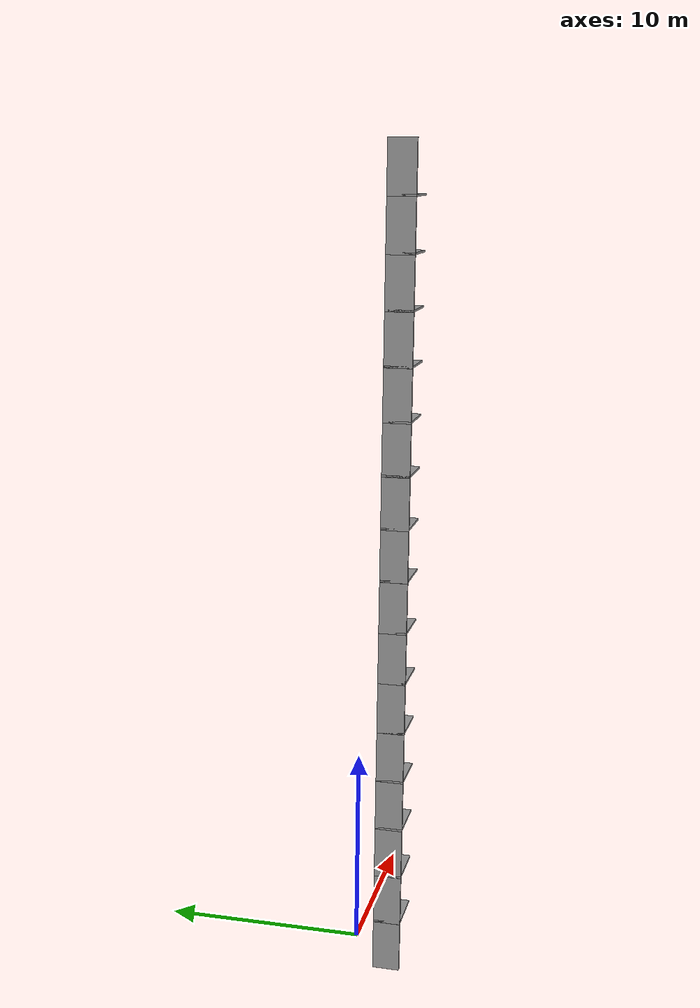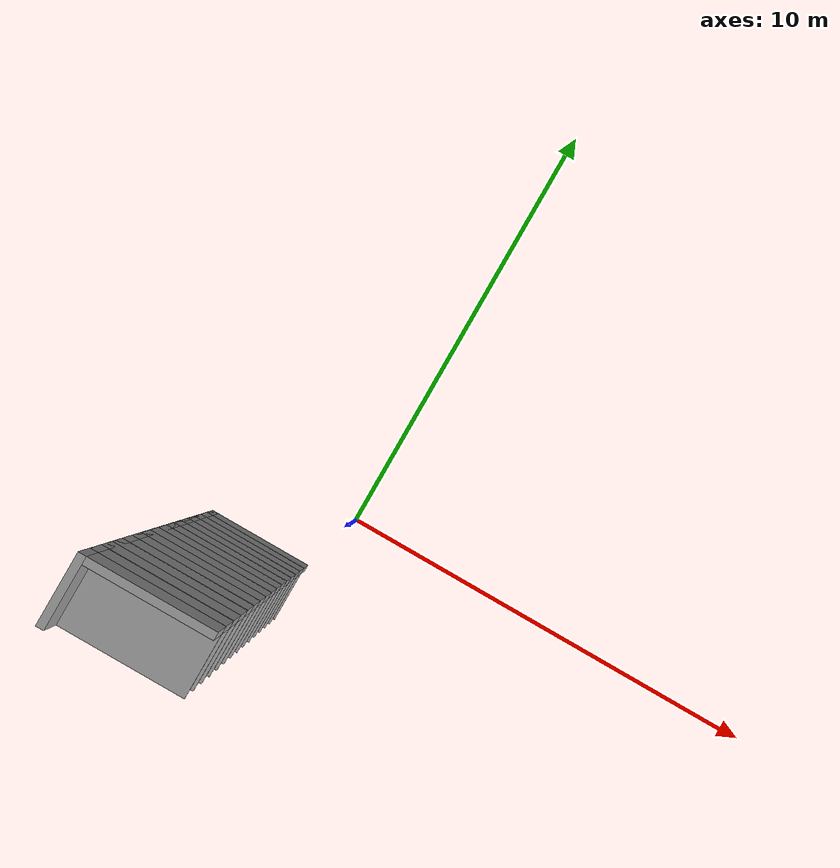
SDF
<?xml version='1.0'?>
<sdf version='1.6'>
  <model name='room1'>
    <pose frame=''>-1.68993 -2.12177 0 0 -0 0</pose>
    <link name='Floor_0'>
      <collision name='Floor_0_Collision'>
        <geometry>
          <box>
            <size>2.51 1.33 0.1</size>
          </box>
        </geometry>
        <pose frame=''>0 0 0.05 0 -0 0</pose>
      </collision>
      <visual name='Floor_0_Visual'>
        <pose frame=''>0 0 0.05 0 -0 0</pose>
        <geometry>
          <box>
            <size>2.51 1.33 0.1</size>
          </box>
        </geometry>
        <material>
          <script>
            <uri>file://media/materials/scripts/gazebo.material</uri>
            <name>Gazebo/Grey</name>
          </script>
          <ambient>1 1 1 1</ambient>
        </material>
        <meta>
          <layer>1</layer>
        </meta>
      </visual>
      <pose frame=''>0 -0 2.5 0 -0 0</pose>
    </link>
    <link name='Floor_1'>
      <collision name='Floor_1_Collision'>
        <geometry>
          <box>
            <size>2.51 1.33 0.1</size>
          </box>
        </geometry>
        <pose frame=''>0 0 0.05 0 -0 0</pose>
      </collision>
      <visual name='Floor_1_Visual'>
        <pose frame=''>0 0 0.05 0 -0 0</pose>
        <geometry>
          <box>
            <size>2.51 1.33 0.1</size>
          </box>
        </geometry>
        <material>
          <script>
            <uri>file://media/materials/scripts/gazebo.material</uri>
            <name>Gazebo/Grey</name>
          </script>
          <ambient>1 1 1 1</ambient>
        </material>
        <meta>
          <layer>2</layer>
        </meta>
      </visual>
      <pose frame=''>0 -0 5 0 -0 0</pose>
    </link>
    <link name='Floor_10'>
      <collision name='Floor_10_Collision'>
        <geometry>
          <box>
            <size>2.51 1.33 0.1</size>
          </box>
        </geometry>
        <pose frame=''>0 0 0.05 0 -0 0</pose>
      </collision>
      <visual name='Floor_10_Visual'>
        <pose frame=''>0 0 0.05 0 -0 0</pose>
        <geometry>
          <box>
            <size>2.51 1.33 0.1</size>
          </box>
        </geometry>
        <material>
          <script>
            <uri>file://media/materials/scripts/gazebo.material</uri>
            <name>Gazebo/Grey</name>
          </script>
          <ambient>1 1 1 1</ambient>
        </material>
        <meta>
          <layer>11</layer>
        </meta>
      </visual>
      <pose frame=''>0 -0 27.5 0 -0 0</pose>
    </link>
    <link name='Floor_11'>
      <collision name='Floor_11_Collision'>
        <geometry>
          <box>
            <size>2.51 1.33 0.1</size>
          </box>
        </geometry>
        <pose frame=''>0 0 0.05 0 -0 0</pose>
      </collision>
      <visual name='Floor_11_Visual'>
        <pose frame=''>0 0 0.05 0 -0 0</pose>
        <geometry>
          <box>
            <size>2.51 1.33 0.1</size>
          </box>
        </geometry>
        <material>
          <script>
            <uri>file://media/materials/scripts/gazebo.material</uri>
            <name>Gazebo/Grey</name>
          </script>
          <ambient>1 1 1 1</ambient>
        </material>
        <meta>
          <layer>12</layer>
        </meta>
      </visual>
      <pose frame=''>0 -0 30 0 -0 0</pose>
    </link>
    <link name='Floor_12'>
      <collision name='Floor_12_Collision'>
        <geometry>
          <box>
            <size>2.51 1.33 0.1</size>
          </box>
        </geometry>
        <pose frame=''>0 0 0.05 0 -0 0</pose>
      </collision>
      <visual name='Floor_12_Visual'>
        <pose frame=''>0 0 0.05 0 -0 0</pose>
        <geometry>
          <box>
            <size>2.51 1.33 0.1</size>
          </box>
        </geometry>
        <material>
          <script>
            <uri>file://media/materials/scripts/gazebo.material</uri>
            <name>Gazebo/Grey</name>
          </script>
          <ambient>1 1 1 1</ambient>
        </material>
        <meta>
          <layer>13</layer>
        </meta>
      </visual>
      <pose frame=''>0 -0 32.5 0 -0 0</pose>
    </link>
    <link name='Floor_13'>
      <collision name='Floor_13_Collision'>
        <geometry>
          <box>
            <size>2.51 1.33 0.1</size>
          </box>
        </geometry>
        <pose frame=''>0 0 0.05 0 -0 0</pose>
      </collision>
      <visual name='Floor_13_Visual'>
        <pose frame=''>0 0 0.05 0 -0 0</pose>
        <geometry>
          <box>
            <size>2.51 1.33 0.1</size>
          </box>
        </geometry>
        <material>
          <script>
            <uri>file://media/materials/scripts/gazebo.material</uri>
            <name>Gazebo/Grey</name>
          </script>
          <ambient>1 1 1 1</ambient>
        </material>
        <meta>
          <layer>14</layer>
        </meta>
      </visual>
      <pose frame=''>0 -0 35 0 -0 0</pose>
    </link>
    <link name='Floor_14'>
      <collision name='Floor_14_Collision'>
        <geometry>
          <box>
            <size>2.51 1.33 0.1</size>
          </box>
        </geometry>
        <pose frame=''>0 0 0.05 0 -0 0</pose>
      </collision>
      <visual name='Floor_14_Visual'>
        <pose frame=''>0 0 0.05 0 -0 0</pose>
        <geometry>
          <box>
            <size>2.51 1.33 0.1</size>
          </box>
        </geometry>
        <material>
          <script>
            <uri>file://media/materials/scripts/gazebo.material</uri>
            <name>Gazebo/Grey</name>
          </script>
          <ambient>1 1 1 1</ambient>
        </material>
        <meta>
          <layer>15</layer>
        </meta>
      </visual>
      <pose frame=''>0 -0 37.5 0 -0 0</pose>
    </link>
    <link name='Floor_2'>
      <collision name='Floor_2_Collision'>
        <geometry>
          <box>
            <size>2.51 1.33 0.1</size>
          </box>
        </geometry>
        <pose frame=''>0 0 0.05 0 -0 0</pose>
      </collision>
      <visual name='Floor_2_Visual'>
        <pose frame=''>0 0 0.05 0 -0 0</pose>
        <geometry>
          <box>
            <size>2.51 1.33 0.1</size>
          </box>
        </geometry>
        <material>
          <script>
            <uri>file://media/materials/scripts/gazebo.material</uri>
            <name>Gazebo/Grey</name>
          </script>
          <ambient>1 1 1 1</ambient>
        </material>
        <meta>
          <layer>3</layer>
        </meta>
      </visual>
      <pose frame=''>0 -0 7.5 0 -0 0</pose>
    </link>
    <link name='Floor_3'>
      <collision name='Floor_3_Collision'>
        <geometry>
          <box>
            <size>2.51 1.33 0.1</size>
          </box>
        </geometry>
        <pose frame=''>0 0 0.05 0 -0 0</pose>
      </collision>
      <visual name='Floor_3_Visual'>
        <pose frame=''>0 0 0.05 0 -0 0</pose>
        <geometry>
          <box>
            <size>2.51 1.33 0.1</size>
          </box>
        </geometry>
        <material>
          <script>
            <uri>file://media/materials/scripts/gazebo.material</uri>
            <name>Gazebo/Grey</name>
          </script>
          <ambient>1 1 1 1</ambient>
        </material>
        <meta>
          <layer>4</layer>
        </meta>
      </visual>
      <pose frame=''>0 -0 10 0 -0 0</pose>
    </link>
    <link name='Floor_4'>
      <collision name='Floor_4_Collision'>
        <geometry>
          <box>
            <size>2.51 1.33 0.1</size>
          </box>
        </geometry>
        <pose frame=''>0 0 0.05 0 -0 0</pose>
      </collision>
      <visual name='Floor_4_Visual'>
        <pose frame=''>0 0 0.05 0 -0 0</pose>
        <geometry>
          <box>
            <size>2.51 1.33 0.1</size>
          </box>
        </geometry>
        <material>
          <script>
            <uri>file://media/materials/scripts/gazebo.material</uri>
            <name>Gazebo/Grey</name>
          </script>
          <ambient>1 1 1 1</ambient>
        </material>
        <meta>
          <layer>5</layer>
        </meta>
      </visual>
      <pose frame=''>0 -0 12.5 0 -0 0</pose>
    </link>
    <link name='Floor_5'>
      <collision name='Floor_5_Collision'>
        <geometry>
          <box>
            <size>2.51 1.33 0.1</size>
          </box>
        </geometry>
        <pose frame=''>0 0 0.05 0 -0 0</pose>
      </collision>
      <visual name='Floor_5_Visual'>
        <pose frame=''>0 0 0.05 0 -0 0</pose>
        <geometry>
          <box>
            <size>2.51 1.33 0.1</size>
          </box>
        </geometry>
        <material>
          <script>
            <uri>file://media/materials/scripts/gazebo.material</uri>
            <name>Gazebo/Grey</name>
          </script>
          <ambient>1 1 1 1</ambient>
        </material>
        <meta>
          <layer>6</layer>
        </meta>
      </visual>
      <pose frame=''>0 -0 15 0 -0 0</pose>
    </link>
    <link name='Floor_6'>
      <collision name='Floor_6_Collision'>
        <geometry>
          <box>
            <size>2.51 1.33 0.1</size>
          </box>
        </geometry>
        <pose frame=''>0 0 0.05 0 -0 0</pose>
      </collision>
      <visual name='Floor_6_Visual'>
        <pose frame=''>0 0 0.05 0 -0 0</pose>
        <geometry>
          <box>
            <size>2.51 1.33 0.1</size>
          </box>
        </geometry>
        <material>
          <script>
            <uri>file://media/materials/scripts/gazebo.material</uri>
            <name>Gazebo/Grey</name>
          </script>
          <ambient>1 1 1 1</ambient>
        </material>
        <meta>
          <layer>7</layer>
        </meta>
      </visual>
      <pose frame=''>0 -0 17.5 0 -0 0</pose>
    </link>
    <link name='Floor_7'>
      <collision name='Floor_7_Collision'>
        <geometry>
          <box>
            <size>2.51 1.33 0.1</size>
          </box>
        </geometry>
        <pose frame=''>0 0 0.05 0 -0 0</pose>
      </collision>
      <visual name='Floor_7_Visual'>
        <pose frame=''>0 0 0.05 0 -0 0</pose>
        <geometry>
          <box>
            <size>2.51 1.33 0.1</size>
          </box>
        </geometry>
        <material>
          <script>
            <uri>file://media/materials/scripts/gazebo.material</uri>
            <name>Gazebo/Grey</name>
          </script>
          <ambient>1 1 1 1</ambient>
        </material>
        <meta>
          <layer>8</layer>
        </meta>
      </visual>
      <pose frame=''>0 -0 20 0 -0 0</pose>
    </link>
    <link name='Floor_8'>
      <collision name='Floor_8_Collision'>
        <geometry>
          <box>
            <size>2.51 1.33 0.1</size>
          </box>
        </geometry>
        <pose frame=''>0 0 0.05 0 -0 0</pose>
      </collision>
      <visual name='Floor_8_Visual'>
        <pose frame=''>0 0 0.05 0 -0 0</pose>
        <geometry>
          <box>
            <size>2.51 1.33 0.1</size>
          </box>
        </geometry>
        <material>
          <script>
            <uri>file://media/materials/scripts/gazebo.material</uri>
            <name>Gazebo/Grey</name>
          </script>
          <ambient>1 1 1 1</ambient>
        </material>
        <meta>
          <layer>9</layer>
        </meta>
      </visual>
      <pose frame=''>0 -0 22.5 0 -0 0</pose>
    </link>
    <link name='Floor_9'>
      <collision name='Floor_9_Collision'>
        <geometry>
          <box>
            <size>2.51 1.33 0.1</size>
          </box>
        </geometry>
        <pose frame=''>0 0 0.05 0 -0 0</pose>
      </collision>
      <visual name='Floor_9_Visual'>
        <pose frame=''>0 0 0.05 0 -0 0</pose>
        <geometry>
          <box>
            <size>2.51 1.33 0.1</size>
          </box>
        </geometry>
        <material>
          <script>
            <uri>file://media/materials/scripts/gazebo.material</uri>
            <name>Gazebo/Grey</name>
          </script>
          <ambient>1 1 1 1</ambient>
        </material>
        <meta>
          <layer>10</layer>
        </meta>
      </visual>
      <pose frame=''>0 -0 25 0 -0 0</pose>
    </link>
    <link name='Wall_0'>
      <collision name='Wall_0_Collision'>
        <geometry>
          <box>
            <size>1.33 0.15 2.5</size>
          </box>
        </geometry>
        <pose frame=''>0 0 1.25 0 -0 0</pose>
      </collision>
      <visual name='Wall_0_Visual'>
        <pose frame=''>0 0 1.25 0 -0 0</pose>
        <geometry>
          <box>
            <size>1.33 0.15 2.5</size>
          </box>
        </geometry>
        <material>
          <script>
            <uri>file://media/materials/scripts/gazebo.material</uri>
            <name>Gazebo/Grey</name>
          </script>
          <ambient>1 1 1 1</ambient>
        </material>
        <meta>
          <layer>0</layer>
        </meta>
      </visual>
      <pose frame=''>-1.18 -0 0 0 -0 1.5708</pose>
    </link>
    <link name='Wall_1'>
      <collision name='Wall_1_Collision'>
        <geometry>
          <box>
            <size>2.5 0.15 2.5</size>
          </box>
        </geometry>
        <pose frame=''>0 0 1.25 0 -0 0</pose>
      </collision>
      <visual name='Wall_1_Visual'>
        <pose frame=''>0 0 1.25 0 -0 0</pose>
        <geometry>
          <box>
            <size>2.5 0.15 2.5</size>
          </box>
        </geometry>
        <material>
          <script>
            <uri>file://media/materials/scripts/gazebo.material</uri>
            <name>Gazebo/Grey</name>
          </script>
          <ambient>1 1 1 1</ambient>
        </material>
        <meta>
          <layer>0</layer>
        </meta>
      </visual>
      <pose frame=''>0.005 0.59 0 0 -0 0</pose>
    </link>
    <link name='Wall_10'>
      <collision name='Wall_10_Collision'>
        <geometry>
          <box>
            <size>2.5 0.15 2.5</size>
          </box>
        </geometry>
        <pose frame=''>0 0 1.25 0 -0 0</pose>
      </collision>
      <visual name='Wall_10_Visual'>
        <pose frame=''>0 0 1.25 0 -0 0</pose>
        <geometry>
          <box>
            <size>2.5 0.15 2.5</size>
          </box>
        </geometry>
        <material>
          <script>
            <uri>file://media/materials/scripts/gazebo.material</uri>
            <name>Gazebo/Grey</name>
          </script>
          <ambient>1 1 1 1</ambient>
        </material>
        <meta>
          <layer>4</layer>
        </meta>
      </visual>
      <pose frame=''>0.005 0.59 10 0 -0 0</pose>
    </link>
    <link name='Wall_11'>
      <collision name='Wall_11_Collision'>
        <geometry>
          <box>
            <size>1.33 0.15 2.5</size>
          </box>
        </geometry>
        <pose frame=''>0 0 1.25 0 -0 0</pose>
      </collision>
      <visual name='Wall_11_Visual'>
        <pose frame=''>0 0 1.25 0 -0 0</pose>
        <geometry>
          <box>
            <size>1.33 0.15 2.5</size>
          </box>
        </geometry>
        <material>
          <script>
            <uri>file://media/materials/scripts/gazebo.material</uri>
            <name>Gazebo/Grey</name>
          </script>
          <ambient>1 1 1 1</ambient>
        </material>
        <meta>
          <layer>5</layer>
        </meta>
      </visual>
      <pose frame=''>-1.18 -0 12.5 0 -0 1.5708</pose>
    </link>
    <link name='Wall_12'>
      <collision name='Wall_12_Collision'>
        <geometry>
          <box>
            <size>2.5 0.15 2.5</size>
          </box>
        </geometry>
        <pose frame=''>0 0 1.25 0 -0 0</pose>
      </collision>
      <visual name='Wall_12_Visual'>
        <pose frame=''>0 0 1.25 0 -0 0</pose>
        <geometry>
          <box>
            <size>2.5 0.15 2.5</size>
          </box>
        </geometry>
        <material>
          <script>
            <uri>file://media/materials/scripts/gazebo.material</uri>
            <name>Gazebo/Grey</name>
          </script>
          <ambient>1 1 1 1</ambient>
        </material>
        <meta>
          <layer>5</layer>
        </meta>
      </visual>
      <pose frame=''>0.005 0.59 12.5 0 -0 0</pose>
    </link>
    <link name='Wall_13'>
      <collision name='Wall_13_Collision'>
        <geometry>
          <box>
            <size>1.33 0.15 2.5</size>
          </box>
        </geometry>
        <pose frame=''>0 0 1.25 0 -0 0</pose>
      </collision>
      <visual name='Wall_13_Visual'>
        <pose frame=''>0 0 1.25 0 -0 0</pose>
        <geometry>
          <box>
            <size>1.33 0.15 2.5</size>
          </box>
        </geometry>
        <material>
          <script>
            <uri>file://media/materials/scripts/gazebo.material</uri>
            <name>Gazebo/Grey</name>
          </script>
          <ambient>1 1 1 1</ambient>
        </material>
        <meta>
          <layer>6</layer>
        </meta>
      </visual>
      <pose frame=''>-1.18 -0 15 0 -0 1.5708</pose>
    </link>
    <link name='Wall_14'>
      <collision name='Wall_14_Collision'>
        <geometry>
          <box>
            <size>2.5 0.15 2.5</size>
          </box>
        </geometry>
        <pose frame=''>0 0 1.25 0 -0 0</pose>
      </collision>
      <visual name='Wall_14_Visual'>
        <pose frame=''>0 0 1.25 0 -0 0</pose>
        <geometry>
          <box>
            <size>2.5 0.15 2.5</size>
          </box>
        </geometry>
        <material>
          <script>
            <uri>file://media/materials/scripts/gazebo.material</uri>
            <name>Gazebo/Grey</name>
          </script>
          <ambient>1 1 1 1</ambient>
        </material>
        <meta>
          <layer>6</layer>
        </meta>
      </visual>
      <pose frame=''>0.005 0.59 15 0 -0 0</pose>
    </link>
    <link name='Wall_15'>
      <collision name='Wall_15_Collision'>
        <geometry>
          <box>
            <size>1.33 0.15 2.5</size>
          </box>
        </geometry>
        <pose frame=''>0 0 1.25 0 -0 0</pose>
      </collision>
      <visual name='Wall_15_Visual'>
        <pose frame=''>0 0 1.25 0 -0 0</pose>
        <geometry>
          <box>
            <size>1.33 0.15 2.5</size>
          </box>
        </geometry>
        <material>
          <script>
            <uri>file://media/materials/scripts/gazebo.material</uri>
            <name>Gazebo/Grey</name>
          </script>
          <ambient>1 1 1 1</ambient>
        </material>
        <meta>
          <layer>7</layer>
        </meta>
      </visual>
      <pose frame=''>-1.18 -0 17.5 0 -0 1.5708</pose>
    </link>
    <link name='Wall_16'>
      <collision name='Wall_16_Collision'>
        <geometry>
          <box>
            <size>2.5 0.15 2.5</size>
          </box>
        </geometry>
        <pose frame=''>0 0 1.25 0 -0 0</pose>
      </collision>
      <visual name='Wall_16_Visual'>
        <pose frame=''>0 0 1.25 0 -0 0</pose>
        <geometry>
          <box>
            <size>2.5 0.15 2.5</size>
          </box>
        </geometry>
        <material>
          <script>
            <uri>file://media/materials/scripts/gazebo.material</uri>
            <name>Gazebo/Grey</name>
          </script>
          <ambient>1 1 1 1</ambient>
        </material>
        <meta>
          <layer>7</layer>
        </meta>
      </visual>
      <pose frame=''>0.005 0.59 17.5 0 -0 0</pose>
    </link>
    <link name='Wall_17'>
      <collision name='Wall_17_Collision'>
        <geometry>
          <box>
            <size>1.33 0.15 2.5</size>
          </box>
        </geometry>
        <pose frame=''>0 0 1.25 0 -0 0</pose>
      </collision>
      <visual name='Wall_17_Visual'>
        <pose frame=''>0 0 1.25 0 -0 0</pose>
        <geometry>
          <box>
            <size>1.33 0.15 2.5</size>
          </box>
        </geometry>
        <material>
          <script>
            <uri>file://media/materials/scripts/gazebo.material</uri>
            <name>Gazebo/Grey</name>
          </script>
          <ambient>1 1 1 1</ambient>
        </material>
        <meta>
          <layer>8</layer>
        </meta>
      </visual>
      <pose frame=''>-1.18 -0 20 0 -0 1.5708</pose>
    </link>
    <link name='Wall_18'>
      <collision name='Wall_18_Collision'>
        <geometry>
          <box>
            <size>2.5 0.15 2.5</size>
          </box>
        </geometry>
        <pose frame=''>0 0 1.25 0 -0 0</pose>
      </collision>
      <visual name='Wall_18_Visual'>
        <pose frame=''>0 0 1.25 0 -0 0</pose>
        <geometry>
          <box>
            <size>2.5 0.15 2.5</size>
          </box>
        </geometry>
        <material>
          <script>
            <uri>file://media/materials/scripts/gazebo.material</uri>
            <name>Gazebo/Grey</name>
          </script>
          <ambient>1 1 1 1</ambient>
        </material>
        <meta>
          <layer>8</layer>
        </meta>
      </visual>
      <pose frame=''>0.005 0.59 20 0 -0 0</pose>
    </link>
    <link name='Wall_19'>
      <collision name='Wall_19_Collision'>
        <geometry>
          <box>
            <size>1.33 0.15 2.5</size>
          </box>
        </geometry>
        <pose frame=''>0 0 1.25 0 -0 0</pose>
      </collision>
      <visual name='Wall_19_Visual'>
        <pose frame=''>0 0 1.25 0 -0 0</pose>
        <geometry>
          <box>
            <size>1.33 0.15 2.5</size>
          </box>
        </geometry>
        <material>
          <script>
            <uri>file://media/materials/scripts/gazebo.material</uri>
            <name>Gazebo/Grey</name>
          </script>
          <ambient>1 1 1 1</ambient>
        </material>
        <meta>
          <layer>9</layer>
        </meta>
      </visual>
      <pose frame=''>-1.18 -0 22.5 0 -0 1.5708</pose>
    </link>
    <link name='Wall_20'>
      <collision name='Wall_20_Collision'>
        <geometry>
          <box>
            <size>2.5 0.15 2.5</size>
          </box>
        </geometry>
        <pose frame=''>0 0 1.25 0 -0 0</pose>
      </collision>
      <visual name='Wall_20_Visual'>
        <pose frame=''>0 0 1.25 0 -0 0</pose>
        <geometry>
          <box>
            <size>2.5 0.15 2.5</size>
          </box>
        </geometry>
        <material>
          <script>
            <uri>file://media/materials/scripts/gazebo.material</uri>
            <name>Gazebo/Grey</name>
          </script>
          <ambient>1 1 1 1</ambient>
        </material>
        <meta>
          <layer>9</layer>
        </meta>
      </visual>
      <pose frame=''>0.005 0.59 22.5 0 -0 0</pose>
    </link>
    <link name='Wall_21'>
      <collision name='Wall_21_Collision'>
        <geometry>
          <box>
            <size>1.33 0.15 2.5</size>
          </box>
        </geometry>
        <pose frame=''>0 0 1.25 0 -0 0</pose>
      </collision>
      <visual name='Wall_21_Visual'>
        <pose frame=''>0 0 1.25 0 -0 0</pose>
        <geometry>
          <box>
            <size>1.33 0.15 2.5</size>
          </box>
        </geometry>
        <material>
          <script>
            <uri>file://media/materials/scripts/gazebo.material</uri>
            <name>Gazebo/Grey</name>
          </script>
          <ambient>1 1 1 1</ambient>
        </material>
        <meta>
          <layer>10</layer>
        </meta>
      </visual>
      <pose frame=''>-1.18 -0 25 0 -0 1.5708</pose>
    </link>
    <link name='Wall_22'>
      <collision name='Wall_22_Collision'>
        <geometry>
          <box>
            <size>2.5 0.15 2.5</size>
          </box>
        </geometry>
        <pose frame=''>0 0 1.25 0 -0 0</pose>
      </collision>
      <visual name='Wall_22_Visual'>
        <pose frame=''>0 0 1.25 0 -0 0</pose>
        <geometry>
          <box>
            <size>2.5 0.15 2.5</size>
          </box>
        </geometry>
        <material>
          <script>
            <uri>file://media/materials/scripts/gazebo.material</uri>
            <name>Gazebo/Grey</name>
          </script>
          <ambient>1 1 1 1</ambient>
        </material>
        <meta>
          <layer>10</layer>
        </meta>
      </visual>
      <pose frame=''>0.005 0.59 25 0 -0 0</pose>
    </link>
    <link name='Wall_23'>
      <collision name='Wall_23_Collision'>
        <geometry>
          <box>
            <size>1.33 0.15 2.5</size>
          </box>
        </geometry>
        <pose frame=''>0 0 1.25 0 -0 0</pose>
      </collision>
      <visual name='Wall_23_Visual'>
        <pose frame=''>0 0 1.25 0 -0 0</pose>
        <geometry>
          <box>
            <size>1.33 0.15 2.5</size>
          </box>
        </geometry>
        <material>
          <script>
            <uri>file://media/materials/scripts/gazebo.material</uri>
            <name>Gazebo/Grey</name>
          </script>
          <ambient>1 1 1 1</ambient>
        </material>
        <meta>
          <layer>11</layer>
        </meta>
      </visual>
      <pose frame=''>-1.18 -0 27.5 0 -0 1.5708</pose>
    </link>
    <link name='Wall_24'>
      <collision name='Wall_24_Collision'>
        <geometry>
          <box>
            <size>2.5 0.15 2.5</size>
          </box>
        </geometry>
        <pose frame=''>0 0 1.25 0 -0 0</pose>
      </collision>
      <visual name='Wall_24_Visual'>
        <pose frame=''>0 0 1.25 0 -0 0</pose>
        <geometry>
          <box>
            <size>2.5 0.15 2.5</size>
          </box>
        </geometry>
        <material>
          <script>
            <uri>file://media/materials/scripts/gazebo.material</uri>
            <name>Gazebo/Grey</name>
          </script>
          <ambient>1 1 1 1</ambient>
        </material>
        <meta>
          <layer>11</layer>
        </meta>
      </visual>
      <pose frame=''>0.005 0.59 27.5 0 -0 0</pose>
    </link>
    <link name='Wall_25'>
      <collision name='Wall_25_Collision'>
        <geometry>
          <box>
            <size>1.33 0.15 2.5</size>
          </box>
        </geometry>
        <pose frame=''>0 0 1.25 0 -0 0</pose>
      </collision>
      <visual name='Wall_25_Visual'>
        <pose frame=''>0 0 1.25 0 -0 0</pose>
        <geometry>
          <box>
            <size>1.33 0.15 2.5</size>
          </box>
        </geometry>
        <material>
          <script>
            <uri>file://media/materials/scripts/gazebo.material</uri>
            <name>Gazebo/Grey</name>
          </script>
          <ambient>1 1 1 1</ambient>
        </material>
        <meta>
          <layer>12</layer>
        </meta>
      </visual>
      <pose frame=''>-1.18 -0 30 0 -0 1.5708</pose>
    </link>
    <link name='Wall_26'>
      <collision name='Wall_26_Collision'>
        <geometry>
          <box>
            <size>2.5 0.15 2.5</size>
          </box>
        </geometry>
        <pose frame=''>0 0 1.25 0 -0 0</pose>
      </collision>
      <visual name='Wall_26_Visual'>
        <pose frame=''>0 0 1.25 0 -0 0</pose>
        <geometry>
          <box>
            <size>2.5 0.15 2.5</size>
          </box>
        </geometry>
        <material>
          <script>
            <uri>file://media/materials/scripts/gazebo.material</uri>
            <name>Gazebo/Grey</name>
          </script>
          <ambient>1 1 1 1</ambient>
        </material>
        <meta>
          <layer>12</layer>
        </meta>
      </visual>
      <pose frame=''>0.005 0.59 30 0 -0 0</pose>
    </link>
    <link name='Wall_27'>
      <collision name='Wall_27_Collision'>
        <geometry>
          <box>
            <size>1.33 0.15 2.5</size>
          </box>
        </geometry>
        <pose frame=''>0 0 1.25 0 -0 0</pose>
      </collision>
      <visual name='Wall_27_Visual'>
        <pose frame=''>0 0 1.25 0 -0 0</pose>
        <geometry>
          <box>
            <size>1.33 0.15 2.5</size>
          </box>
        </geometry>
        <material>
          <script>
            <uri>file://media/materials/scripts/gazebo.material</uri>
            <name>Gazebo/Grey</name>
          </script>
          <ambient>1 1 1 1</ambient>
        </material>
        <meta>
          <layer>13</layer>
        </meta>
      </visual>
      <pose frame=''>-1.18 -0 32.5 0 -0 1.5708</pose>
    </link>
    <link name='Wall_28'>
      <collision name='Wall_28_Collision'>
        <geometry>
          <box>
            <size>2.5 0.15 2.5</size>
          </box>
        </geometry>
        <pose frame=''>0 0 1.25 0 -0 0</pose>
      </collision>
      <visual name='Wall_28_Visual'>
        <pose frame=''>0 0 1.25 0 -0 0</pose>
        <geometry>
          <box>
            <size>2.5 0.15 2.5</size>
          </box>
        </geometry>
        <material>
          <script>
            <uri>file://media/materials/scripts/gazebo.material</uri>
            <name>Gazebo/Grey</name>
          </script>
          <ambient>1 1 1 1</ambient>
        </material>
        <meta>
          <layer>13</layer>
        </meta>
      </visual>
      <pose frame=''>0.005 0.59 32.5 0 -0 0</pose>
    </link>
    <link name='Wall_29'>
      <collision name='Wall_29_Collision'>
        <geometry>
          <box>
            <size>1.33 0.15 2.5</size>
          </box>
        </geometry>
        <pose frame=''>0 0 1.25 0 -0 0</pose>
      </collision>
      <visual name='Wall_29_Visual'>
        <pose frame=''>0 0 1.25 0 -0 0</pose>
        <geometry>
          <box>
            <size>1.33 0.15 2.5</size>
          </box>
        </geometry>
        <material>
          <script>
            <uri>file://media/materials/scripts/gazebo.material</uri>
            <name>Gazebo/Grey</name>
          </script>
          <ambient>1 1 1 1</ambient>
        </material>
        <meta>
          <layer>14</layer>
        </meta>
      </visual>
      <pose frame=''>-1.18 -0 35 0 -0 1.5708</pose>
    </link>
    <link name='Wall_3'>
      <collision name='Wall_3_Collision'>
        <geometry>
          <box>
            <size>1.33 0.15 2.5</size>
          </box>
        </geometry>
        <pose frame=''>0 0 1.25 0 -0 0</pose>
      </collision>
      <visual name='Wall_3_Visual'>
        <pose frame=''>0 0 1.25 0 -0 0</pose>
        <geometry>
          <box>
            <size>1.33 0.15 2.5</size>
          </box>
        </geometry>
        <material>
          <script>
            <uri>file://media/materials/scripts/gazebo.material</uri>
            <name>Gazebo/Grey</name>
          </script>
          <ambient>1 1 1 1</ambient>
        </material>
        <meta>
          <layer>1</layer>
        </meta>
      </visual>
      <pose frame=''>-1.18 -0 2.5 0 -0 1.5708</pose>
    </link>
    <link name='Wall_30'>
      <collision name='Wall_30_Collision'>
        <geometry>
          <box>
            <size>2.5 0.15 2.5</size>
          </box>
        </geometry>
        <pose frame=''>0 0 1.25 0 -0 0</pose>
      </collision>
      <visual name='Wall_30_Visual'>
        <pose frame=''>0 0 1.25 0 -0 0</pose>
        <geometry>
          <box>
            <size>2.5 0.15 2.5</size>
          </box>
        </geometry>
        <material>
          <script>
            <uri>file://media/materials/scripts/gazebo.material</uri>
            <name>Gazebo/Grey</name>
          </script>
          <ambient>1 1 1 1</ambient>
        </material>
        <meta>
          <layer>14</layer>
        </meta>
      </visual>
      <pose frame=''>0.005 0.59 35 0 -0 0</pose>
    </link>
    <link name='Wall_31'>
      <collision name='Wall_31_Collision'>
        <geometry>
          <box>
            <size>1.33 0.15 2.5</size>
          </box>
        </geometry>
        <pose frame=''>0 0 1.25 0 -0 0</pose>
      </collision>
      <visual name='Wall_31_Visual'>
        <pose frame=''>0 0 1.25 0 -0 0</pose>
        <geometry>
          <box>
            <size>1.33 0.15 2.5</size>
          </box>
        </geometry>
        <material>
          <script>
            <uri>file://media/materials/scripts/gazebo.material</uri>
            <name>Gazebo/Grey</name>
          </script>
          <ambient>1 1 1 1</ambient>
        </material>
        <meta>
          <layer>15</layer>
        </meta>
      </visual>
      <pose frame=''>-1.18 -0 37.5 0 -0 1.5708</pose>
    </link>
    <link name='Wall_32'>
      <collision name='Wall_32_Collision'>
        <geometry>
          <box>
            <size>2.5 0.15 2.5</size>
          </box>
        </geometry>
        <pose frame=''>0 0 1.25 0 -0 0</pose>
      </collision>
      <visual name='Wall_32_Visual'>
        <pose frame=''>0 0 1.25 0 -0 0</pose>
        <geometry>
          <box>
            <size>2.5 0.15 2.5</size>
          </box>
        </geometry>
        <material>
          <script>
            <uri>file://media/materials/scripts/gazebo.material</uri>
            <name>Gazebo/Grey</name>
          </script>
          <ambient>1 1 1 1</ambient>
        </material>
        <meta>
          <layer>15</layer>
        </meta>
      </visual>
      <pose frame=''>0.005 0.59 37.5 0 -0 0</pose>
    </link>
    <link name='Wall_4'>
      <collision name='Wall_4_Collision'>
        <geometry>
          <box>
            <size>2.5 0.15 2.5</size>
          </box>
        </geometry>
        <pose frame=''>0 0 1.25 0 -0 0</pose>
      </collision>
      <visual name='Wall_4_Visual'>
        <pose frame=''>0 0 1.25 0 -0 0</pose>
        <geometry>
          <box>
            <size>2.5 0.15 2.5</size>
          </box>
        </geometry>
        <material>
          <script>
            <uri>file://media/materials/scripts/gazebo.material</uri>
            <name>Gazebo/Grey</name>
          </script>
          <ambient>1 1 1 1</ambient>
        </material>
        <meta>
          <layer>1</layer>
        </meta>
      </visual>
      <pose frame=''>0.005 0.59 2.5 0 -0 0</pose>
    </link>
    <link name='Wall_5'>
      <collision name='Wall_5_Collision'>
        <geometry>
          <box>
            <size>1.33 0.15 2.5</size>
          </box>
        </geometry>
        <pose frame=''>0 0 1.25 0 -0 0</pose>
      </collision>
      <visual name='Wall_5_Visual'>
        <pose frame=''>0 0 1.25 0 -0 0</pose>
        <geometry>
          <box>
            <size>1.33 0.15 2.5</size>
          </box>
        </geometry>
        <material>
          <script>
            <uri>file://media/materials/scripts/gazebo.material</uri>
            <name>Gazebo/Grey</name>
          </script>
          <ambient>1 1 1 1</ambient>
        </material>
        <meta>
          <layer>2</layer>
        </meta>
      </visual>
      <pose frame=''>-1.18 -0 5 0 -0 1.5708</pose>
    </link>
    <link name='Wall_6'>
      <collision name='Wall_6_Collision'>
        <geometry>
          <box>
            <size>2.5 0.15 2.5</size>
          </box>
        </geometry>
        <pose frame=''>0 0 1.25 0 -0 0</pose>
      </collision>
      <visual name='Wall_6_Visual'>
        <pose frame=''>0 0 1.25 0 -0 0</pose>
        <geometry>
          <box>
            <size>2.5 0.15 2.5</size>
          </box>
        </geometry>
        <material>
          <script>
            <uri>file://media/materials/scripts/gazebo.material</uri>
            <name>Gazebo/Grey</name>
          </script>
          <ambient>1 1 1 1</ambient>
        </material>
        <meta>
          <layer>2</layer>
        </meta>
      </visual>
      <pose frame=''>0.005 0.59 5 0 -0 0</pose>
    </link>
    <link name='Wall_7'>
      <collision name='Wall_7_Collision'>
        <geometry>
          <box>
            <size>1.33 0.15 2.5</size>
          </box>
        </geometry>
        <pose frame=''>0 0 1.25 0 -0 0</pose>
      </collision>
      <visual name='Wall_7_Visual'>
        <pose frame=''>0 0 1.25 0 -0 0</pose>
        <geometry>
          <box>
            <size>1.33 0.15 2.5</size>
          </box>
        </geometry>
        <material>
          <script>
            <uri>file://media/materials/scripts/gazebo.material</uri>
            <name>Gazebo/Grey</name>
          </script>
          <ambient>1 1 1 1</ambient>
        </material>
        <meta>
          <layer>3</layer>
        </meta>
      </visual>
      <pose frame=''>-1.18 -0 7.5 0 -0 1.5708</pose>
    </link>
    <link name='Wall_8'>
      <collision name='Wall_8_Collision'>
        <geometry>
          <box>
            <size>2.5 0.15 2.5</size>
          </box>
        </geometry>
        <pose frame=''>0 0 1.25 0 -0 0</pose>
      </collision>
      <visual name='Wall_8_Visual'>
        <pose frame=''>0 0 1.25 0 -0 0</pose>
        <geometry>
          <box>
            <size>2.5 0.15 2.5</size>
          </box>
        </geometry>
        <material>
          <script>
            <uri>file://media/materials/scripts/gazebo.material</uri>
            <name>Gazebo/Grey</name>
          </script>
          <ambient>1 1 1 1</ambient>
        </material>
        <meta>
          <layer>3</layer>
        </meta>
      </visual>
      <pose frame=''>0.005 0.59 7.5 0 -0 0</pose>
    </link>
    <link name='Wall_9'>
      <collision name='Wall_9_Collision'>
        <geometry>
          <box>
            <size>1.33 0.15 2.5</size>
          </box>
        </geometry>
        <pose frame=''>0 0 1.25 0 -0 0</pose>
      </collision>
      <visual name='Wall_9_Visual'>
        <pose frame=''>0 0 1.25 0 -0 0</pose>
        <geometry>
          <box>
            <size>1.33 0.15 2.5</size>
          </box>
        </geometry>
        <material>
          <script>
            <uri>file://media/materials/scripts/gazebo.material</uri>
            <name>Gazebo/Grey</name>
          </script>
          <ambient>1 1 1 1</ambient>
        </material>
        <meta>
          <layer>4</layer>
        </meta>
      </visual>
      <pose frame=''>-1.18 -0 10 0 -0 1.5708</pose>
    </link>
    <static>1</static>
  </model>
</sdf>
